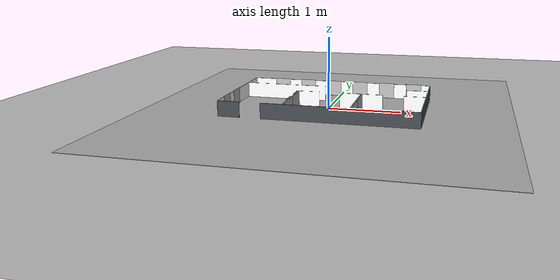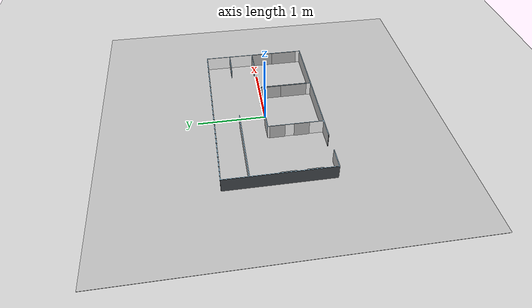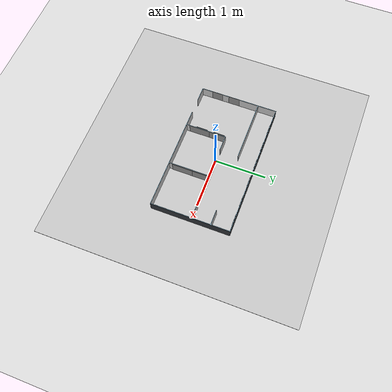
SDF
<?xml version="1.0" ?>
<sdf version="1.4">
  <world name="tortoisebot_warehouse_world">

    <!-- Floor -->
    <include>
      <uri>model://ground_plane</uri>
    </include>

    <include>
        <uri>model://sun</uri>
      </include>

    <scene>
        <shadows>false</shadows>
    </scene>

    <gui fullscreen='0'>
        <camera name='user_camera'>
            <pose>-2.7613 -4.29898 3.33134 0 0.5854 0.8986</pose>
            <view_controller>orbit</view_controller>
            <projection_type>perspective</projection_type>
        </camera>
    </gui>

    <physics type="ode">
        <real_time_update_rate>1000.0</real_time_update_rate>
        <max_step_size>0.001</max_step_size>
        <real_time_factor>1</real_time_factor>
        <ode>
            <solver>
                <type>quick</type>
                <iters>150</iters>
                <precon_iters>0</precon_iters>
                <sor>1.400000</sor>
                <use_dynamic_moi_rescaling>1</use_dynamic_moi_rescaling>
            </solver>
            <constraints>
                <cfm>0.00001</cfm>
                <erp>0.2</erp>
                <contact_max_correcting_vel>2000.000000</contact_max_correcting_vel>
                <contact_surface_layer>0.01000</contact_surface_layer>
            </constraints>
        </ode>

    </physics>

    <!-- Model -->
    <include>
      <uri>model://tortoisebot_warehouse</uri>
      <pose>0 0 0 0 0 0</pose> <!-- Adjust the pose if needed -->
    </include>

    <!-- Image on the Floor -->
    <include>
        <uri>model://image_floor</uri>
        <pose>0 -0.08 0.005 0 0 0</pose> <!-- Adjust the pose if needed -->
    </include>

    <!-- Image: trailer dock 6 -->
    <include>
      <uri>model://image_trailer_dock</uri>
      <name>image_trailer_dock_6</name>
      <pose>1.1 0.76 0.12 1.57 0 0</pose>
    </include>

    <!-- Image: trailer dock 5 -->
    <include>
      <uri>model://image_trailer_dock</uri>
      <name>image_trailer_dock_5</name>
      <pose>0.7 0.76 0.12 1.57 0 0</pose>
    </include>

    <!-- Image: trailer dock 4 -->
    <include>
      <uri>model://image_trailer_dock</uri>
      <name>image_trailer_dock_4</name>
      <pose>0.3 0.76 0.12 1.57 0 0</pose>
    </include>

    <!-- Image: trailer dock 3 -->
    <include>
      <uri>model://image_trailer_dock</uri>
      <name>image_trailer_dock_3</name>
      <pose>-0.1 0.76 0.12 1.57 0 0</pose>
    </include>

    <!-- Image: trailer dock 2 -->
    <include>
      <uri>model://image_trailer_dock</uri>
      <name>image_trailer_dock_2</name>
      <pose>-0.5 0.76 0.12 1.57 0 0</pose>
    </include>

    <!-- Image: trailer dock 1 -->
    <include>
      <uri>model://image_trailer_dock</uri>
      <name>image_trailer_dock_1</name>
      <pose>-0.9 0.76 0.12 1.57 0 0</pose>
    </include>

    <!-- Image: fan 1 -->
    <include>
      <uri>model://image_fan</uri>
      <name>image_fan_1</name>
      <pose>-0.46 -0.1 0.12 1.57 0 -1.57</pose>
    </include>

    <!-- Image: fan 2 -->
    <include>
      <uri>model://image_fan</uri>
      <name>image_fan_2</name>
      <pose>-0.46 -0.45 0.12 1.57 0 -1.57</pose>
    </include>

    <!-- Image: fan 3 -->
    <include>
      <uri>model://image_fan</uri>
      <name>image_fan_3</name>
      <pose>-1.33 -0.1 0.12 -1.57 0 -1.57</pose>
    </include>

    <!-- Image: fan 4 -->
    <include>
      <uri>model://image_fan</uri>
      <name>image_fan_4</name>
      <pose>-1.33 -0.45 0.12 -1.57 0 -1.57</pose>
    </include>

    <!-- Image: pallet rack 1 -->
    <include>
      <uri>model://image_pallet_rack</uri>
      <name>image_pallet_rack_1</name>
      <pose>0.44 -0.17 0.11 1.57 0 -1.57</pose>
    </include>

    <!-- Image: pallet rack 2 -->
    <include>
      <uri>model://image_pallet_rack</uri>
      <name>image_pallet_rack_2</name>
      <pose>0.44 -0.5 0.11 1.57 0 -1.57</pose>
    </include>

    <!-- Image: pallet rack 3 -->
    <include>
      <uri>model://image_pallet_rack</uri>
      <name>image_pallet_rack_3</name>
      <pose>-0.44 -0.17 0.11 1.57 0 1.57</pose>
    </include>

    <!-- Image: pallet rack 4 -->
    <include>
      <uri>model://image_pallet_rack</uri>
      <name>image_pallet_rack_4</name>
      <pose>-0.44 -0.5 0.11 1.57 0 1.57</pose>
    </include>

    <!-- Image: pallet rack 5 -->
    <include>
      <uri>model://image_pallet_rack</uri>
      <name>image_pallet_rack_5</name>
      <pose>1.33 -0.17 0.11 1.57 0 -1.57</pose>
    </include>

    <!-- Image: pallet rack 6 -->
    <include>
      <uri>model://image_pallet_rack</uri>
      <name>image_pallet_rack_6</name>
      <pose>1.33 -0.5 0.11 1.57 0 -1.57</pose>
    </include>

    <!-- Image: pallet rack 7 -->
    <include>
      <uri>model://image_pallet_rack</uri>
      <name>image_pallet_rack_7</name>
      <pose>0.46 -0.17 0.11 1.57 0 1.57</pose>
    </include>

    <!-- Image: pallet rack 8 -->
    <include>
      <uri>model://image_pallet_rack</uri>
      <name>image_pallet_rack_8</name>
      <pose>0.46 -0.5 0.11 1.57 0 1.57</pose>
    </include>

  </world>
</sdf>

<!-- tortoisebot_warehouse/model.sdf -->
<sdf version="1.5">
  <model name="tortoisebot_warehouse">
    <static>true</static>
    <pose>0 0 0 0 0 0</pose>
    <link name="tortoisebot_walls">
      <inertial>
        <mass>5</mass>
        <inertia>
          <ixx>1.0</ixx>
          <ixy>0.0</ixy>
          <iyy>1.0</iyy>
          <ixz>0.0</ixz>
          <iyz>0.0</iyz>
          <izz>1.0</izz>
        </inertia>
        <pose>0 0 0 0 0 0</pose>
      </inertial>
      <collision name="collision">
        <geometry>
          <mesh>
            <uri>model://tortoisebot_warehouse/meshes/tortoisebot_warehouse_walls.dae</uri>
          </mesh>
        </geometry>
      </collision>
      <visual name="visual">
        <geometry>
          <mesh>
            <uri>model://tortoisebot_warehouse/meshes/tortoisebot_warehouse_walls.dae</uri>
          </mesh>
        </geometry>
      </visual>
    </link>
  </model>
</sdf>

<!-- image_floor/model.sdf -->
<sdf version="1.5">
<model name="image_floor">
  <static>true</static>
    <link name="floor">
      <collision name="collision">
        <geometry>
          <plane>
            <normal>0 0 1</normal>
            <size>5 5</size>
          </plane>
        </geometry>
        <surface>
          <friction>
            <ode>
              <mu>100</mu>
              <mu2>50</mu2>
            </ode>
          </friction>
        </surface>
      </collision>

      <visual name="visual">
        <cast_shadows>false</cast_shadows>
        <geometry>
          <plane>
            <normal>0 0 1</normal>
            <size>5 5</size>
          </plane>
        </geometry>
        <material>
          <script>
            <uri>model://image_floor/materials/scripts</uri>
            <uri>model://image_floor/materials/textures</uri>
            <name>ImageFloor/Image</name>
          </script>
        </material>
      </visual>
    </link>
  </model>
</sdf>

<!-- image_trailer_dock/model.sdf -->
<sdf version="1.4">
<model name="image_trailer_dock">
  <static>true</static>
    <link name="link">
      <visual name="visual">
        <cast_shadows>false</cast_shadows>
        <geometry>
          <plane>
            <normal>0 0 1</normal>
            <size>0.22 0.22</size>
          </plane>
        </geometry>
        <material>
          <script>
            <uri>model://image_trailer_dock/materials/scripts</uri>
            <uri>model://image_trailer_dock/materials/textures</uri>
            <name>ImageTrailerDock/Image</name>
          </script>
        </material>
      </visual>
    </link>
  </model>
</sdf>

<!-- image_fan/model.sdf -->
<sdf version="1.4">
<model name="image_fan">
  <static>true</static>
    <link name="link">
      <visual name="visual">
        <cast_shadows>false</cast_shadows>
        <geometry>
          <plane>
            <normal>0 0 1</normal>
            <size>0.22 0.22</size>
          </plane>
        </geometry>
        <material>
          <script>
            <uri>model://image_fan/materials/scripts</uri>
            <uri>model://image_fan/materials/textures</uri>
            <name>ImageFan/Image</name>
          </script>
        </material>
      </visual>
    </link>
  </model>
</sdf>

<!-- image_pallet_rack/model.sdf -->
<sdf version="1.4">
<model name="image_pallet_rack">
  <static>true</static>
    <link name="link">
      <visual name="visual">
        <cast_shadows>false</cast_shadows>
        <geometry>
          <plane>
            <normal>0 0 1</normal>
            <size>0.4 0.22</size>
          </plane>
        </geometry>
        <material>
          <script>
            <uri>model://image_pallet_rack/materials/scripts</uri>
            <uri>model://image_pallet_rack/materials/textures</uri>
            <name>ImagePalletRack/Image</name>
          </script>
        </material>
      </visual>
    </link>
  </model>
</sdf>
